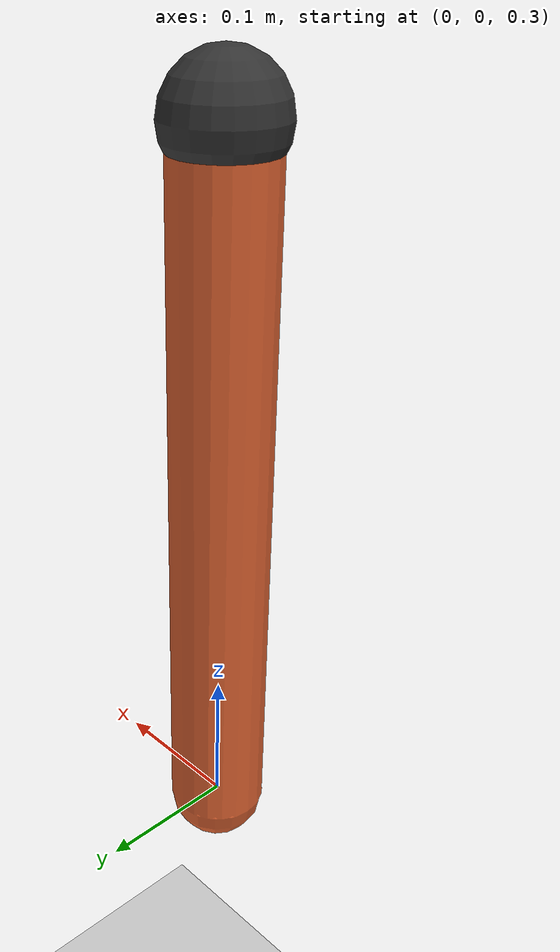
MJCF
<mujoco model="single hinge">
  <!-- timestep 是每次仿真前进的时间，这里 0.002 秒表示 500Hz。 -->
  <!-- gravity 是世界坐标系下的重力加速度，z 方向为 -9.81 m/s^2。 -->
  <option timestep="0.002" gravity="0 0 -9.81"/>

  <!-- worldbody 里面放场景中的物体、灯光和机器人结构。 -->
  <worldbody>
    <!-- 一盏灯，方便 Viewer 中看清模型。 -->
    <light pos="0 0 2"/>

    <!-- 地面。type="plane" 表示无限平面，rgba 表示颜色和透明度。 -->
    <geom name="floor" type="plane" size="2 2 0.1" rgba="0.8 0.8 0.8 1"/>

    <!-- stand 是固定在世界中的支架 body，pos 表示它在世界坐标系的位置。 -->
    <body name="stand" pos="0 0 0.8">
      <!-- 支架用一个小球表示，只负责可视化和碰撞形状。 -->
      <geom type="sphere" size="0.04" rgba="0.2 0.2 0.2 1"/>

      <!-- arm 是 stand 的子 body，它会围绕下面的 hinge 关节转动。 -->
      <body name="arm">
        <!-- hinge 表示转动关节，arm 会绕 axis 指定的轴旋转。 -->
        <!-- axis="0 1 0" 表示绕 y 轴转动。 -->
        <!-- range="-90 90" 表示关节角度范围是 -90 到 90 度。 -->
        <!-- damping 是阻尼，让关节运动不会过于抖动。 -->
        <joint name="arm_joint"
               type="hinge"
               axis="0 1 0"
               range="-90 90"
               damping="0.2"/>

        <!-- 胶囊体形状的机械臂，从 fromto 的起点延伸到终点。 -->
        <!-- mass 是质量，rgba 是颜色。 -->
        <geom name="arm_geom"
              type="capsule"
              fromto="0 0 0 0 0 -0.5"
              size="0.035"
              mass="0.5"
              rgba="0.9 0.4 0.2 1"/>
      </body>
    </body>
  </worldbody>

  <!-- actuator 定义执行器，也就是程序可以控制的东西。 -->
  <actuator>
    <!-- position 是位置控制执行器。 -->
    <!-- joint="arm_joint" 表示它控制上面定义的 arm_joint。 -->
    <!-- kp/kv 是控制器参数，ctrlrange 是允许输入的目标角度范围，单位是弧度。 -->
    <position name="arm_position"
              joint="arm_joint"
              kp="30"
              kv="3"
              ctrlrange="-1.57 1.57"/>
  </actuator>
</mujoco>
